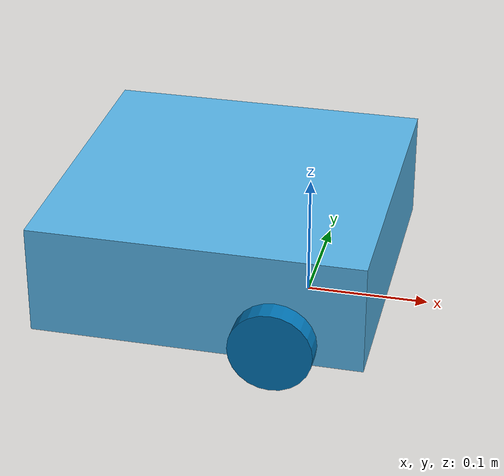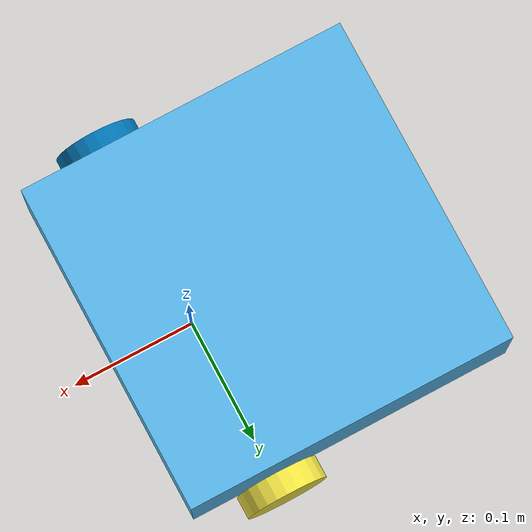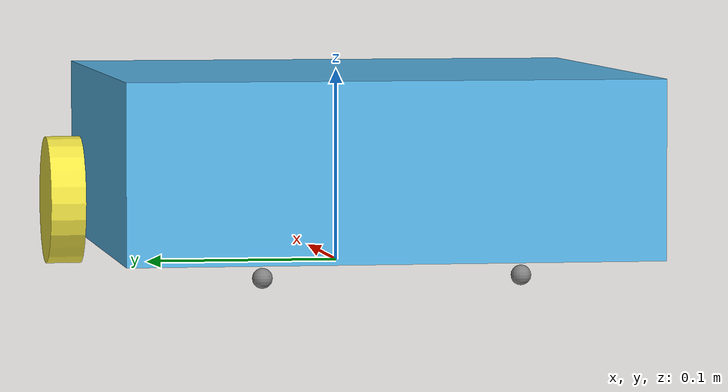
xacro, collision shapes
<?xml version="1.0"?>
<robot xmlns:xacro="http://www.ros.org/wiki/xacro" name="custom_turtlebot">

  <!-- Parameters -->
  <xacro:property name="wheel_separation" value="0.287" />
  <xacro:property name="wheel_radius" value="0.033" />
  <xacro:property name="wheel_width" value="0.018" />
  <xacro:property name="mass_base" value="1.0" />
  <xacro:property name="mass_wheel" value="0.1" />

  <!-- Materials -->
  <material name="grey">
    <color rgba="0.5 0.5 0.5 1.0"/>
  </material>

  <!-- Root frame -->
  <link name="base_footprint" />

  <!-- base_link connected to base_footprint -->
  <link name="base_link">
    <inertial>
      <origin xyz="-0.064 0 0.048" rpy="0 0 0"/>
      <mass value="${mass_base}"/>
      <inertia ixx="0.001" ixy="0.0" ixz="0.0" iyy="0.001" iyz="0.0" izz="0.001"/>
    </inertial>

    <visual name="base_visual">
      <origin xyz="-0.064 0 0" rpy="0 0 0"/>
      <geometry>
        <mesh filename="package://follower/models/custom_turtlebot/meshes/waffle_pi_base.dae" scale="1 1 1"/>
      </geometry>
    </visual>

    <collision name="base_collision">
      <origin xyz="-0.064 0 0.048" rpy="0 0 0"/>
      <geometry>
        <box size="0.265 0.265 0.089"/>
      </geometry>
    </collision>
  </link>

  <!-- fixed joint from base_footprint to base_link -->
  <joint name="base_footprint_to_base_link" type="fixed">
    <parent link="base_footprint"/>
    <child link="base_link"/>
    <origin xyz="0 0 0.010" rpy="0 0 0"/>
  </joint>

  <!-- IMU link (visual/placeholder) -->
  <link name="imu_link">
    <inertial>
      <origin xyz="0 0 0" rpy="0 0 0"/>
      <mass value="0.01"/>
      <inertia ixx="1e-5" ixy="0" ixz="0" iyy="1e-5" iyz="0" izz="1e-5"/>
    </inertial>
  </link>
  <joint name="base_to_imu" type="fixed">
    <parent link="base_link"/>
    <child link="imu_link"/>
    <origin xyz="0 0 0.05" rpy="0 0 0"/>
  </joint>

  <!-- Wheel left -->
  <link name="wheel_left_link">
    <inertial>
      <origin xyz="0 0 0" rpy="0 0 0"/>
      <mass value="${mass_wheel}"/>
      <inertia ixx="0.001" ixy="0.0" ixz="0.0" iyy="0.001" iyz="0.0" izz="0.001"/>
    </inertial>

    <visual name="wheel_left_visual">
      <origin xyz="0 0 0" rpy="0 0 0"/>
      <geometry>
        <mesh filename="package://follower/models/custom_turtlebot/meshes/tire.dae" scale="1 1 1"/>
      </geometry>
    </visual>

    <collision name="wheel_left_collision">
      <origin xyz="0 0 0" rpy="0 0 0"/>
      <geometry>
        <cylinder radius="${wheel_radius}" length="${wheel_width}"/>
      </geometry>
    </collision>
  </link>

  <!-- Wheel right -->
  <link name="wheel_right_link">
    <inertial>
      <origin xyz="0 0 0" rpy="0 0 0"/>
      <mass value="${mass_wheel}"/>
      <inertia ixx="0.001" ixy="0.0" ixz="0.0" iyy="0.001" iyz="0.0" izz="0.001"/>
    </inertial>

    <visual name="wheel_right_visual">
      <origin xyz="0 0 0" rpy="0 0 0"/>
      <geometry>
        <mesh filename="package://follower/models/custom_turtlebot/meshes/tire.dae" scale="1 1 1"/>
      </geometry>
    </visual>

    <collision name="wheel_right_collision">
      <origin xyz="0 0 0" rpy="0 0 0"/>
      <geometry>
        <cylinder radius="${wheel_radius}" length="${wheel_width}"/>
      </geometry>
    </collision>
  </link>

  <!-- wheel joints (revolute) -->
  <!-- note: SDF had rotation -1.57 around X; here we keep axis z for drive -->
  <joint name="wheel_left_joint" type="continuous">
    <parent link="base_link"/>
    <child link="wheel_left_link"/>
    <origin xyz="0.0 0.144 0.023" rpy="-1.5708 0 0"/>
    <axis xyz="0 0 1"/>
    <limit lower="-1000" upper="1000" effort="10" velocity="20"/>
  </joint>

  <joint name="wheel_right_joint" type="continuous">
    <parent link="base_link"/>
    <child link="wheel_right_link"/>
    <origin xyz="0.0 -0.144 0.023" rpy="-1.5708 0 0"/>
    <axis xyz="0 0 1"/>
    <limit lower="-1000" upper="1000" effort="10" velocity="20"/>
  </joint>

  <!-- caster wheels -->
  <link name="caster_back_right_link">
    <inertial>
      <origin xyz="0 0 0" rpy="0 0 0"/>
      <mass value="0.001"/>
      <inertia ixx="1e-5" ixy="0" ixz="0" iyy="1e-5" iyz="0" izz="1e-5"/>
    </inertial>
    <visual>
      <origin xyz="0 0 0" rpy="0 0 0"/>
      <geometry><sphere radius="0.005"/></geometry>
      <material name="grey"/>
    </visual>
    <collision><origin xyz="0 0 0" rpy="0 0 0"/><geometry><sphere radius="0.005"/></geometry></collision>
  </link>

  <link name="caster_back_left_link">
    <inertial>
      <origin xyz="0 0 0" rpy="0 0 0"/>
      <mass value="0.001"/>
      <inertia ixx="1e-5" ixy="0" ixz="0" iyy="1e-5" iyz="0" izz="1e-5"/>
    </inertial>
    <visual>
      <origin xyz="0 0 0" rpy="0 0 0"/>
      <geometry><sphere radius="0.005"/></geometry>
      <material name="grey"/>
    </visual>
    <collision><origin xyz="0 0 0" rpy="0 0 0"/><geometry><sphere radius="0.005"/></geometry></collision>
  </link>

  <joint name="caster_back_right_joint" type="fixed">
    <parent link="base_link"/>
    <child link="caster_back_right_link"/>
    <origin xyz="-0.177 -0.064 -0.004" rpy="0 0 0"/>
  </joint>

  <joint name="caster_back_left_joint" type="fixed">
    <parent link="base_link"/>
    <child link="caster_back_left_link"/>
    <origin xyz="-0.177 0.064 -0.004" rpy="0 0 0"/>
  </joint>

  <!-- camera links -->
  <link name="camera_link"/>
  <link name="camera_rgb_optical_frame">
    <inertial>
      <origin xyz="0.076 0.0 0.093" rpy="0 0 0"/>
      <mass value="0.035"/>
      <inertia ixx="0.001" ixy="0.0" ixz="0.0" iyy="0.001" iyz="0.0" izz="0.001"/>
    </inertial>
  </link>

  <joint name="camera_joint" type="fixed">
    <parent link="base_link"/>
    <child link="camera_link"/>
    <origin xyz="0.073 -0.011 0.084" rpy="0 0 0"/>
  </joint>

  <joint name="camera_rgb_joint" type="fixed">
    <parent link="camera_link"/>
    <child link="camera_rgb_optical_frame"/>
    <origin xyz="0.003 0.011 0.009" rpy="0 0 0"/>
  </joint>

  <!-- Transmissions for ros2_control (velocity interface) -->
  <transmission name="left_wheel_trans">
    <type>transmission_interface/SimpleTransmission</type>
    <joint name="wheel_left_joint">
      <hardwareInterface>VelocityJointInterface</hardwareInterface>
    </joint>
    <actuator name="left_motor">
      <mechanicalReduction>1</mechanicalReduction>
    </actuator>
  </transmission>

  <transmission name="right_wheel_trans">
    <type>transmission_interface/SimpleTransmission</type>
    <joint name="wheel_right_joint">
      <hardwareInterface>VelocityJointInterface</hardwareInterface>
    </joint>
    <actuator name="right_motor">
      <mechanicalReduction>1</mechanicalReduction>
    </actuator>
  </transmission>

</robot>
